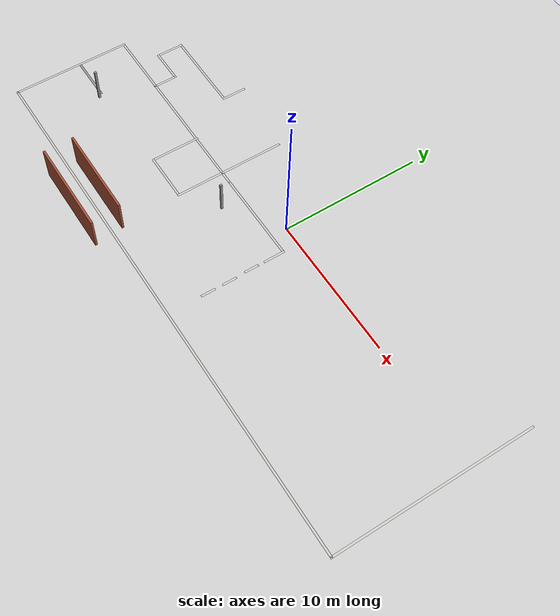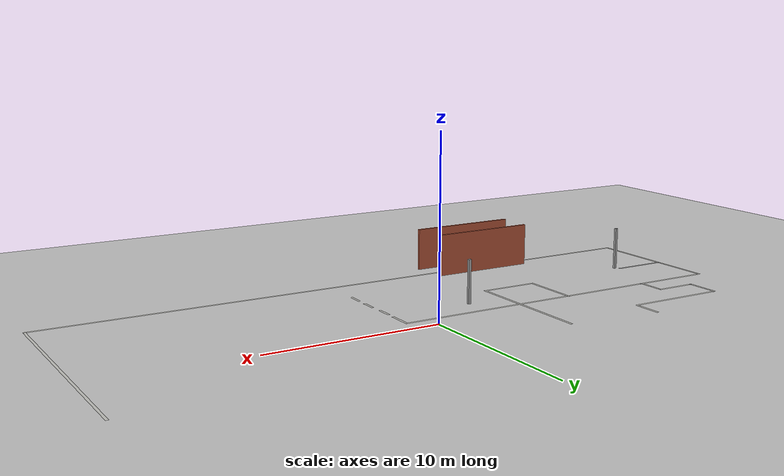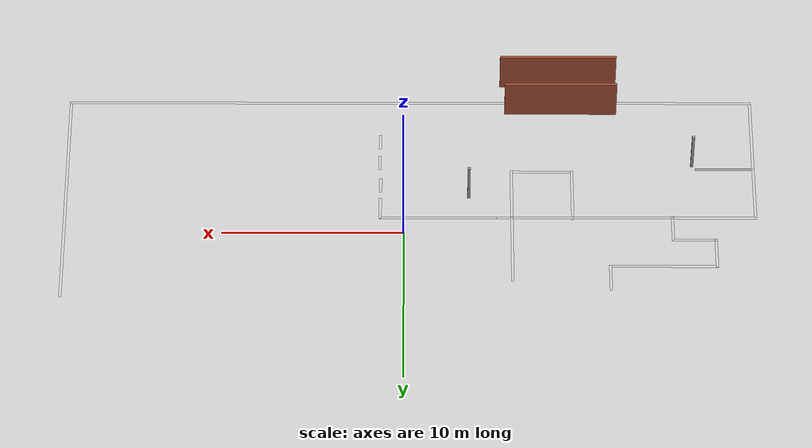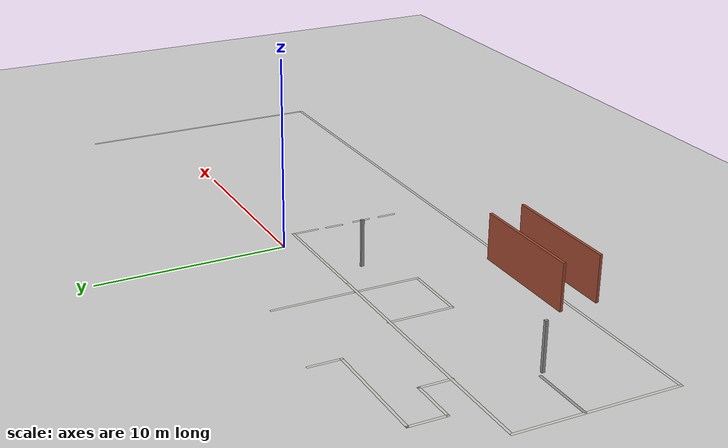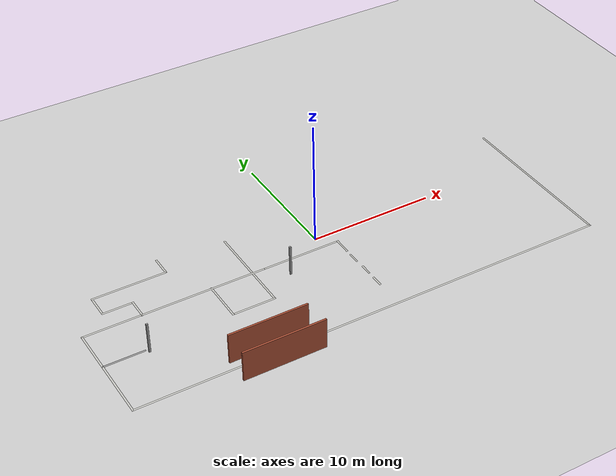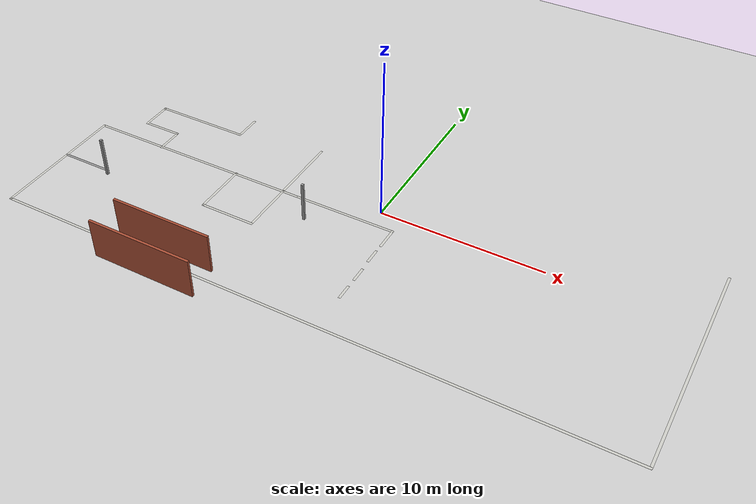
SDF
<?xml version="1.0" ?>

<sdf version="1.5">
	<world name="default">
		<!-- A global light source -->
		<include>
			<uri>model://sun</uri>
		</include>

		<!-- A ground plane -->
		<include>
			<uri>model://ground_plane</uri>
		</include>

      		<!-- Our custom model -->
		<include>
			<uri>model://sample2</uri>
		</include>

	</world>
</sdf>

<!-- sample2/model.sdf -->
<sdf version='1.6'>
  <model name='sample2'>
    <pose frame=''>-0.349999 -3.1535 0 0 -0 0</pose>
    <link name='Wall_10'>
      <collision name='Wall_10_Collision'>
        <geometry>
          <box>
            <size>14.5 0.15 0</size>
          </box>
        </geometry>
        <pose frame=''>0 0 0 0 -0 0</pose>
      </collision>
      <visual name='Wall_10_Visual'>
        <pose frame=''>0 0 0 0 -0 0</pose>
        <geometry>
          <box>
            <size>14.5 0.15 0</size>
          </box>
        </geometry>
        <material>
          <script>
            <uri>file://media/materials/scripts/gazebo.material</uri>
            <name>Gazebo/CeilingTiled</name>
          </script>
          <ambient>1 1 1 1</ambient>
        </material>
        <meta>
          <layer>0</layer>
        </meta>
      </visual>
      <pose frame=''>-11.875 2.0485 0 0 -0 3.14159</pose>
    </link>
    <link name='Wall_11'>
      <collision name='Wall_11_Collision'>
        <geometry>
          <box>
            <size>8.485 0.15 0</size>
          </box>
        </geometry>
        <pose frame=''>0 0 0 0 -0 0</pose>
      </collision>
      <visual name='Wall_11_Visual'>
        <pose frame=''>0 0 0 0 -0 0</pose>
        <geometry>
          <box>
            <size>8.485 0.15 0</size>
          </box>
        </geometry>
        <material>
          <script>
            <uri>file://media/materials/scripts/gazebo.material</uri>
            <name>Gazebo/CeilingTiled</name>
          </script>
          <ambient>1 1 1 1</ambient>
        </material>
        <meta>
          <layer>0</layer>
        </meta>
      </visual>
      <pose frame=''>-19.05 -2.119 0 0 -0 -1.5708</pose>
    </link>
    <link name='Wall_12'>
      <collision name='Wall_12_Collision'>
        <geometry>
          <box>
            <size>38.25 0.15 0</size>
          </box>
        </geometry>
        <pose frame=''>0 0 0 0 -0 0</pose>
      </collision>
      <visual name='Wall_12_Visual'>
        <pose frame=''>0 0 0 0 -0 0</pose>
        <geometry>
          <box>
            <size>38.25 0.15 0</size>
          </box>
        </geometry>
        <material>
          <script>
            <uri>file://media/materials/scripts/gazebo.material</uri>
            <name>Gazebo/CeilingTiled</name>
          </script>
          <ambient>1 1 1 1</ambient>
        </material>
        <meta>
          <layer>0</layer>
        </meta>
      </visual>
      <pose frame=''>-1e-06 -6.2865 0 0 -0 0</pose>
    </link>
    <link name='Wall_13'>
      <collision name='Wall_13_Collision'>
        <geometry>
          <box>
            <size>14 0.15 0</size>
          </box>
        </geometry>
        <pose frame=''>0 0 0 0 -0 0</pose>
      </collision>
      <visual name='Wall_13_Visual'>
        <pose frame=''>0 0 0 0 -0 0</pose>
        <geometry>
          <box>
            <size>14 0.15 0</size>
          </box>
        </geometry>
        <material>
          <script>
            <uri>file://media/materials/scripts/gazebo.material</uri>
            <name>Gazebo/CeilingTiled</name>
          </script>
          <ambient>1 1 1 1</ambient>
        </material>
        <meta>
          <layer>0</layer>
        </meta>
      </visual>
      <pose frame=''>19.05 0.638499 0 0 -0 1.5708</pose>
    </link>
    <link name='Wall_15'>
      <collision name='Wall_15_Collision'>
        <geometry>
          <box>
            <size>3.5 0.15 0</size>
          </box>
        </geometry>
        <pose frame=''>0 0 0 0 -0 0</pose>
      </collision>
      <visual name='Wall_15_Visual'>
        <pose frame=''>0 0 0 0 -0 0</pose>
        <geometry>
          <box>
            <size>3.5 0.15 0</size>
          </box>
        </geometry>
        <material>
          <script>
            <uri>file://media/materials/scripts/gazebo.material</uri>
            <name>Gazebo/CeilingTiled</name>
          </script>
          <ambient>1 1 1 1</ambient>
        </material>
        <meta>
          <layer>0</layer>
        </meta>
      </visual>
      <pose frame=''>-8.964 0.4255 0 0 -0 -1.5708</pose>
    </link>
    <link name='Wall_16'>
      <collision name='Wall_16_Collision'>
        <geometry>
          <box>
            <size>3.5 0.15 0</size>
          </box>
        </geometry>
        <pose frame=''>0 0 0 0 -0 0</pose>
      </collision>
      <visual name='Wall_16_Visual'>
        <pose frame=''>0 0 0 0 -0 0</pose>
        <geometry>
          <box>
            <size>3.5 0.15 0</size>
          </box>
        </geometry>
        <material>
          <script>
            <uri>file://media/materials/scripts/gazebo.material</uri>
            <name>Gazebo/CeilingTiled</name>
          </script>
          <ambient>1 1 1 1</ambient>
        </material>
        <meta>
          <layer>0</layer>
        </meta>
      </visual>
      <pose frame=''>-7.289 -1.2545 0 0 -0 -0.002985</pose>
    </link>
    <link name='Wall_21'>
      <collision name='Wall_21_Collision'>
        <geometry>
          <box>
            <size>0.15 0.15 2.5</size>
          </box>
        </geometry>
        <pose frame=''>0 0 1.25 0 -0 0</pose>
      </collision>
      <visual name='Wall_21_Visual'>
        <pose frame=''>0 0 1.25 0 -0 0</pose>
        <geometry>
          <box>
            <size>0.15 0.15 2.5</size>
          </box>
        </geometry>
        <material>
          <script>
            <uri>file://media/materials/scripts/gazebo.material</uri>
            <name>Gazebo/Grey</name>
          </script>
          <ambient>1 1 1 1</ambient>
        </material>
        <meta>
          <layer>0</layer>
        </meta>
      </visual>
      <pose frame=''>-3.2453 0.556235 0 0 -0 0</pose>
    </link>
    <link name='Wall_22'>
      <collision name='Wall_22_Collision'>
        <geometry>
          <box>
            <size>0.15 0.15 2.5</size>
          </box>
        </geometry>
        <pose frame=''>0 0 1.25 0 -0 0</pose>
      </collision>
      <visual name='Wall_22_Visual'>
        <pose frame=''>0 0 1.25 0 -0 0</pose>
        <geometry>
          <box>
            <size>0.15 0.15 2.5</size>
          </box>
        </geometry>
        <material>
          <script>
            <uri>file://media/materials/scripts/gazebo.material</uri>
            <name>Gazebo/Grey</name>
          </script>
          <ambient>1 1 1 1</ambient>
        </material>
        <meta>
          <layer>0</layer>
        </meta>
      </visual>
      <pose frame=''>-3.2453 0.556235 0 0 -0 0</pose>
    </link>
    <link name='Wall_26'>
      <collision name='Wall_26_Collision'>
        <geometry>
          <box>
            <size>3.25 0.15 0</size>
          </box>
        </geometry>
        <pose frame=''>0 0 0 0 -0 0</pose>
      </collision>
      <visual name='Wall_26_Visual'>
        <pose frame=''>0 0 0 0 -0 0</pose>
        <geometry>
          <box>
            <size>3.25 0.15 0</size>
          </box>
        </geometry>
        <material>
          <script>
            <uri>file://media/materials/scripts/gazebo.material</uri>
            <name>Gazebo/Grey</name>
          </script>
          <ambient>1 1 1 1</ambient>
        </material>
        <meta>
          <layer>0</layer>
        </meta>
      </visual>
      <pose frame=''>-17.452 -1.4515 0 0 -0 0</pose>
    </link>
    <link name='Wall_31'>
      <collision name='Wall_31_Collision'>
        <geometry>
          <box>
            <size>0.15 0.15 2.5</size>
          </box>
        </geometry>
        <pose frame=''>0 0 1.25 0 -0 0</pose>
      </collision>
      <visual name='Wall_31_Visual'>
        <pose frame=''>0 0 1.25 0 -0 0</pose>
        <geometry>
          <box>
            <size>0.15 0.15 2.5</size>
          </box>
        </geometry>
        <material>
          <script>
            <uri>file://media/materials/scripts/gazebo.material</uri>
            <name>Gazebo/Grey</name>
          </script>
          <ambient>1 1 1 1</ambient>
        </material>
        <meta>
          <layer>0</layer>
        </meta>
      </visual>
      <pose frame=''>-15.6523 -1.70149 0 0 -0 0</pose>
    </link>
    <link name='Wall_4'>
      <collision name='Wall_4_Collision'>
        <geometry>
          <box>
            <size>1.5 0.15 0</size>
          </box>
        </geometry>
        <pose frame=''>0 0 0 0 -0 0</pose>
      </collision>
      <visual name='Wall_4_Visual'>
        <pose frame=''>0 0 0 0 -0 0</pose>
        <geometry>
          <box>
            <size>1.5 0.15 0</size>
          </box>
        </geometry>
        <material>
          <script>
            <uri>file://media/materials/scripts/gazebo.material</uri>
            <name>Gazebo/CeilingTiled</name>
          </script>
          <ambient>1 1 1 1</ambient>
        </material>
        <meta>
          <layer>0</layer>
        </meta>
      </visual>
      <pose frame=''>1.65 1.3885 0 0 -0 1.5708</pose>
    </link>
    <link name='Wall_41'>
      <collision name='Wall_41_Collision'>
        <geometry>
          <box>
            <size>6.25 0.15 2.5</size>
          </box>
        </geometry>
        <pose frame=''>0 0 1.25 0 -0 0</pose>
      </collision>
      <visual name='Wall_41_Visual'>
        <pose frame=''>0 0 1.25 0 -0 0</pose>
        <geometry>
          <box>
            <size>6.25 0.15 2.5</size>
          </box>
        </geometry>
        <material>
          <script>
            <uri>file://media/materials/scripts/gazebo.material</uri>
            <name>Gazebo/Bricks</name>
          </script>
          <ambient>0.760784 0.662745 0.627451 1</ambient>
        </material>
        <meta>
          <layer>0</layer>
        </meta>
      </visual>
      <pose frame=''>-8.406 -5.5355 0 0 -0 3.14159</pose>
    </link>
    <link name='Wall_43'>
      <collision name='Wall_43_Collision'>
        <geometry>
          <box>
            <size>6.5 0.15 2.5</size>
          </box>
        </geometry>
        <pose frame=''>0 0 1.25 0 -0 0</pose>
      </collision>
      <visual name='Wall_43_Visual'>
        <pose frame=''>0 0 1.25 0 -0 0</pose>
        <geometry>
          <box>
            <size>6.5 0.15 2.5</size>
          </box>
        </geometry>
        <material>
          <script>
            <uri>file://media/materials/scripts/gazebo.material</uri>
            <name>Gazebo/Bricks</name>
          </script>
          <ambient>0.760784 0.662745 0.627451 1</ambient>
        </material>
        <meta>
          <layer>0</layer>
        </meta>
      </visual>
      <pose frame=''>-8.285 -7.5635 0 0 -0 0</pose>
    </link>
    <link name='Wall_49'>
      <collision name='Wall_49_Collision'>
        <geometry>
          <box>
            <size>3.5 0.15 0</size>
          </box>
        </geometry>
        <pose frame=''>0 0 0 0 -0 0</pose>
      </collision>
      <visual name='Wall_49_Visual'>
        <pose frame=''>0 0 0 0 -0 0</pose>
        <geometry>
          <box>
            <size>3.5 0.15 0</size>
          </box>
        </geometry>
        <material>
          <script>
            <uri>file://media/materials/scripts/gazebo.material</uri>
            <name>Gazebo/CeilingTiled</name>
          </script>
          <ambient>1 1 1 1</ambient>
        </material>
        <meta>
          <layer>0</layer>
        </meta>
      </visual>
      <pose frame=''>-5.614 0.4155 0 0 -0 1.5708</pose>
    </link>
    <link name='Wall_51'>
      <collision name='Wall_51_Collision'>
        <geometry>
          <box>
            <size>4.5 0.15 0</size>
          </box>
        </geometry>
        <pose frame=''>0 0 0 0 -0 0</pose>
      </collision>
      <visual name='Wall_51_Visual'>
        <pose frame=''>0 0 0 0 -0 0</pose>
        <geometry>
          <box>
            <size>4.5 0.15 0</size>
          </box>
        </geometry>
        <material>
          <script>
            <uri>file://media/materials/scripts/gazebo.material</uri>
            <name>Gazebo/CeilingTiled</name>
          </script>
          <ambient>1 1 1 1</ambient>
        </material>
        <meta>
          <layer>0</layer>
        </meta>
      </visual>
      <pose frame=''>-5.614 4.2655 0 0 -0 1.5708</pose>
    </link>
    <link name='Wall_53'>
      <collision name='Wall_53_Collision'>
        <geometry>
          <box>
            <size>1.75 0.15 0</size>
          </box>
        </geometry>
        <pose frame=''>0 0 0 0 -0 0</pose>
      </collision>
      <visual name='Wall_53_Visual'>
        <pose frame=''>0 0 0 0 -0 0</pose>
        <geometry>
          <box>
            <size>1.75 0.15 0</size>
          </box>
        </geometry>
        <material>
          <script>
            <uri>file://media/materials/scripts/gazebo.material</uri>
            <name>Gazebo/CeilingTiled</name>
          </script>
          <ambient>1 1 1 1</ambient>
        </material>
        <meta>
          <layer>0</layer>
        </meta>
      </visual>
      <pose frame=''>-14.467 2.8135 0 0 -0 1.5708</pose>
    </link>
    <link name='Wall_54'>
      <collision name='Wall_54_Collision'>
        <geometry>
          <box>
            <size>2.5 0.15 0</size>
          </box>
        </geometry>
        <pose frame=''>0 0 0 0 -0 0</pose>
      </collision>
      <visual name='Wall_54_Visual'>
        <pose frame=''>0 0 0 0 -0 0</pose>
        <geometry>
          <box>
            <size>2.5 0.15 0</size>
          </box>
        </geometry>
        <material>
          <script>
            <uri>file://media/materials/scripts/gazebo.material</uri>
            <name>Gazebo/CeilingTiled</name>
          </script>
          <ambient>1 1 1 1</ambient>
        </material>
        <meta>
          <layer>0</layer>
        </meta>
      </visual>
      <pose frame=''>-15.642 3.6135 0 0 -0 3.14159</pose>
    </link>
    <link name='Wall_55'>
      <collision name='Wall_55_Collision'>
        <geometry>
          <box>
            <size>2 0.15 0</size>
          </box>
        </geometry>
        <pose frame=''>0 0 0 0 -0 0</pose>
      </collision>
      <visual name='Wall_55_Visual'>
        <pose frame=''>0 0 0 0 -0 0</pose>
        <geometry>
          <box>
            <size>2 0.15 0</size>
          </box>
        </geometry>
        <material>
          <script>
            <uri>file://media/materials/scripts/gazebo.material</uri>
            <name>Gazebo/CeilingTiled</name>
          </script>
          <ambient>1 1 1 1</ambient>
        </material>
        <meta>
          <layer>0</layer>
        </meta>
      </visual>
      <pose frame=''>-16.817 4.5385 0 0 -0 1.5708</pose>
    </link>
    <link name='Wall_56'>
      <collision name='Wall_56_Collision'>
        <geometry>
          <box>
            <size>6 0.15 0</size>
          </box>
        </geometry>
        <pose frame=''>0 0 0 0 -0 0</pose>
      </collision>
      <visual name='Wall_56_Visual'>
        <pose frame=''>0 0 0 0 -0 0</pose>
        <geometry>
          <box>
            <size>6 0.15 0</size>
          </box>
        </geometry>
        <material>
          <script>
            <uri>file://media/materials/scripts/gazebo.material</uri>
            <name>Gazebo/CeilingTiled</name>
          </script>
          <ambient>1 1 1 1</ambient>
        </material>
        <meta>
          <layer>0</layer>
        </meta>
      </visual>
      <pose frame=''>-13.892 5.4635 0 0 -0 0</pose>
    </link>
    <link name='Wall_57'>
      <collision name='Wall_57_Collision'>
        <geometry>
          <box>
            <size>1.75 0.15 0</size>
          </box>
        </geometry>
        <pose frame=''>0 0 0 0 -0 0</pose>
      </collision>
      <visual name='Wall_57_Visual'>
        <pose frame=''>0 0 0 0 -0 0</pose>
        <geometry>
          <box>
            <size>1.75 0.15 0</size>
          </box>
        </geometry>
        <material>
          <script>
            <uri>file://media/materials/scripts/gazebo.material</uri>
            <name>Gazebo/CeilingTiled</name>
          </script>
          <ambient>1 1 1 1</ambient>
        </material>
        <meta>
          <layer>0</layer>
        </meta>
      </visual>
      <pose frame=''>-10.967 6.2635 0 0 -0 1.5708</pose>
    </link>
    <link name='Wall_59'>
      <collision name='Wall_59_Collision'>
        <geometry>
          <box>
            <size>1 0.15 0</size>
          </box>
        </geometry>
        <pose frame=''>0 0 0 0 -0 0</pose>
      </collision>
      <visual name='Wall_59_Visual'>
        <pose frame=''>0 0 0 0 -0 0</pose>
        <geometry>
          <box>
            <size>1 0.15 0</size>
          </box>
        </geometry>
        <material>
          <script>
            <uri>file://media/materials/scripts/gazebo.material</uri>
            <name>Gazebo/CeilingTiled</name>
          </script>
          <ambient>1 1 1 1</ambient>
        </material>
        <meta>
          <layer>0</layer>
        </meta>
      </visual>
      <pose frame=''>1.631 -0.272501 0 0 -0 -1.5708</pose>
    </link>
    <link name='Wall_61'>
      <collision name='Wall_61_Collision'>
        <geometry>
          <box>
            <size>1 0.15 0</size>
          </box>
        </geometry>
        <pose frame=''>0 0 0 0 -0 0</pose>
      </collision>
      <visual name='Wall_61_Visual'>
        <pose frame=''>0 0 0 0 -0 0</pose>
        <geometry>
          <box>
            <size>1 0.15 0</size>
          </box>
        </geometry>
        <material>
          <script>
            <uri>file://media/materials/scripts/gazebo.material</uri>
            <name>Gazebo/CeilingTiled</name>
          </script>
          <ambient>1 1 1 1</ambient>
        </material>
        <meta>
          <layer>0</layer>
        </meta>
      </visual>
      <pose frame=''>1.677 -1.9015 0 0 -0 -1.5708</pose>
    </link>
    <link name='Wall_64'>
      <collision name='Wall_64_Collision'>
        <geometry>
          <box>
            <size>1 0.15 0</size>
          </box>
        </geometry>
        <pose frame=''>0 0 0 0 -0 0</pose>
      </collision>
      <visual name='Wall_64_Visual'>
        <pose frame=''>0 0 0 0 -0 0</pose>
        <geometry>
          <box>
            <size>1 0.15 0</size>
          </box>
        </geometry>
        <material>
          <script>
            <uri>file://media/materials/scripts/gazebo.material</uri>
            <name>Gazebo/CeilingTiled</name>
          </script>
          <ambient>1 1 1 1</ambient>
        </material>
        <meta>
          <layer>0</layer>
        </meta>
      </visual>
      <pose frame=''>1.664 -3.4205 0 0 -0 -1.5708</pose>
    </link>
    <link name='Wall_8'>
      <collision name='Wall_8_Collision'>
        <geometry>
          <box>
            <size>6.5 0.15 0</size>
          </box>
        </geometry>
        <pose frame=''>0 0 0 0 -0 0</pose>
      </collision>
      <visual name='Wall_8_Visual'>
        <pose frame=''>0 0 0 0 -0 0</pose>
        <geometry>
          <box>
            <size>6.5 0.15 0</size>
          </box>
        </geometry>
        <material>
          <script>
            <uri>file://media/materials/scripts/gazebo.material</uri>
            <name>Gazebo/CeilingTiled</name>
          </script>
          <ambient>1 1 1 1</ambient>
        </material>
        <meta>
          <layer>0</layer>
        </meta>
      </visual>
      <pose frame=''>-1.525 2.056 0 0 -0 -3.13923</pose>
    </link>
    <static>1</static>
  </model>
</sdf>
